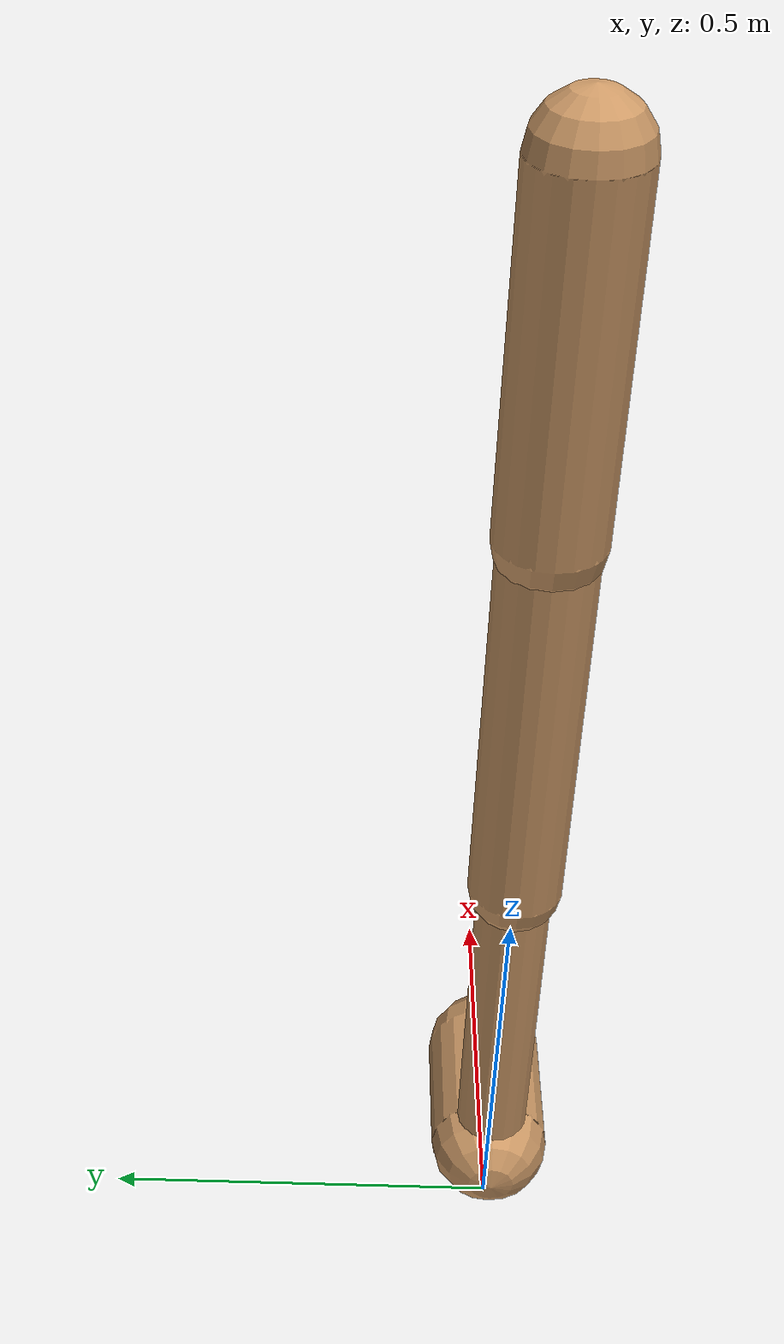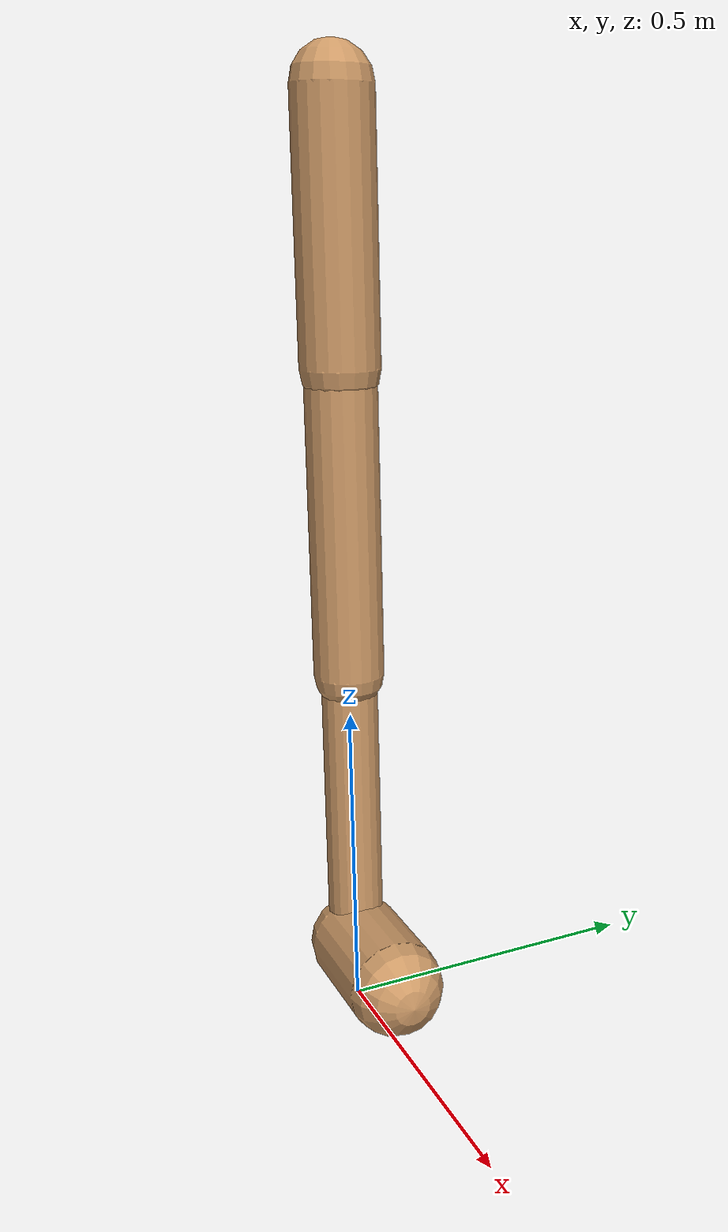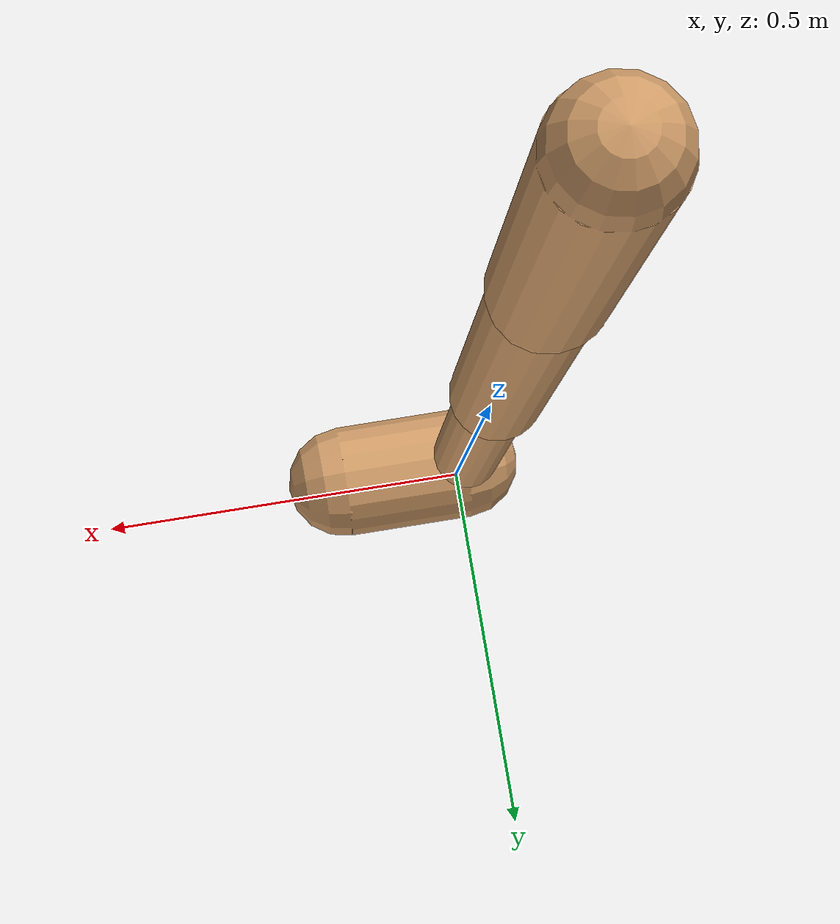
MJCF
<mujoco model="walker2d">
  <compiler angle="degree" coordinate="global" inertiafromgeom="true" />
  <default>
    <joint armature="0.01" damping=".1" limited="true" />
    <geom conaffinity="0" condim="3" contype="1" density="1000" friction="0.8 .1 .1" rgba="0.8 0.6 .4 1" />
  </default>
  <option integrator="RK4" timestep="0.002" />
  <worldbody>

    <body name="torso" pos="0 0 0.06275295860684277">
      <joint armature="0" axis="1 0 0" damping="0" limited="false" name="ignorex" pos="0 0 0" stiffness="0" type="slide" />
      <joint armature="0" axis="0 0 1" damping="0" limited="false" name="ignorez" pos="0 0 0" ref="1.25" stiffness="0" type="slide" />
      <joint armature="0" axis="0 1 0" damping="0" limited="false" name="ignorey" pos="0 0 0" stiffness="0" type="hinge" />
      <geom fromto="0 0 1.45 0 0 1.05" name="torso_geom" size="0.0614644386916359" type="capsule" />
      <body name="thigh">
        <joint axis="0 -1 0" name="thigh_joint" pos="0 0 1.05" range="-150 0" type="hinge" />
        <geom fromto="0.0 0.0 1.05 0.0 0.0 0.570274914344127" name="thigh_geom" size="0.05558243877259303" type="capsule" />
        <body name="leg" pos="0.0 0.0 -0.02972508565587295">
          <joint axis="0 -1 0" name="leg_joint" pos="0 0 0.6" range="-150 0" type="hinge" />
          <geom fromto="0.0 0.0 0.6 0.0 0.0 0.06697212704903013" name="leg_geom" size="0.04446595101807442" type="capsule" />
          <body name="foot" pos="0.0 0.0 -0.03302787295096987">
            <joint axis="0 -1 0" name="foot_joint" pos="0 0 0.1" range="-45 45" type="hinge" />
            <geom fromto="0.0 0.0 0.1 0.16644983073996605 0.0 0.1" name="foot_geom" size="0.07556025264251315" type="capsule" />
          </body>
        </body>
      </body>

      <body name="thigh_left">
        <joint axis="0 -1 0" name="thigh_left_joint" pos="0 0 1.05" range="-150 0" type="hinge" />
        <geom fromto="0.0 0.0 1.05 0.0 0.0 0.570274914344127" name="thigh_left_geom" rgba=".7 .3 .6 1" size="0.05558243877259303" type="capsule" />
        <body name="leg_left" pos="0.0 0.0 -0.02972508565587295">
          <joint axis="0 -1 0" name="leg_left_joint" pos="0 0 0.6" range="-150 0" type="hinge" />
          <geom fromto="0.0 0.0 0.6 0.0 0.0 0.06697212704903013" name="leg_left_geom" rgba=".7 .3 .6 1" size="0.04446595101807442" type="capsule" />
          <body name="foot_left" pos="0.0 0.0 -0.03302787295096987">
            <joint axis="0 -1 0" name="foot_left_joint" pos="0 0 0.1" range="-45 45" type="hinge" />
            <geom fromto="0.0 0.0 0.1 0.16644983073996605 0.0 0.1" name="foot_left_geom" rgba=".7 .3 .6 1" size="0.07556025264251315" type="capsule" />
          </body>
        </body>
      </body>
    </body>
  </worldbody>
  <actuator>

    <motor ctrllimited="true" ctrlrange="-1.0 1.0" gear="100" joint="thigh_joint" />
    <motor ctrllimited="true" ctrlrange="-1.0 1.0" gear="100" joint="leg_joint" />
    <motor ctrllimited="true" ctrlrange="-1.0 1.0" gear="100" joint="foot_joint" />
    <motor ctrllimited="true" ctrlrange="-1.0 1.0" gear="100" joint="thigh_left_joint" />
    <motor ctrllimited="true" ctrlrange="-1.0 1.0" gear="100" joint="leg_left_joint" />
    <motor ctrllimited="true" ctrlrange="-1.0 1.0" gear="100" joint="foot_left_joint" />

  </actuator>
</mujoco>
